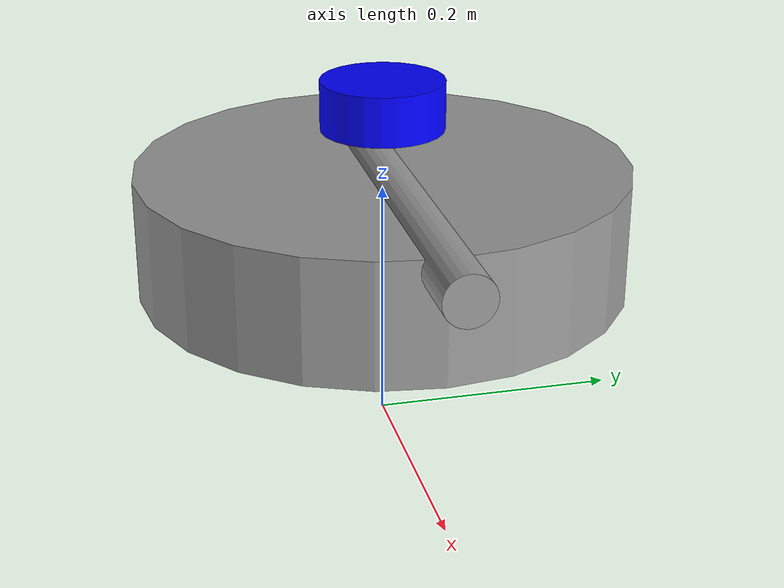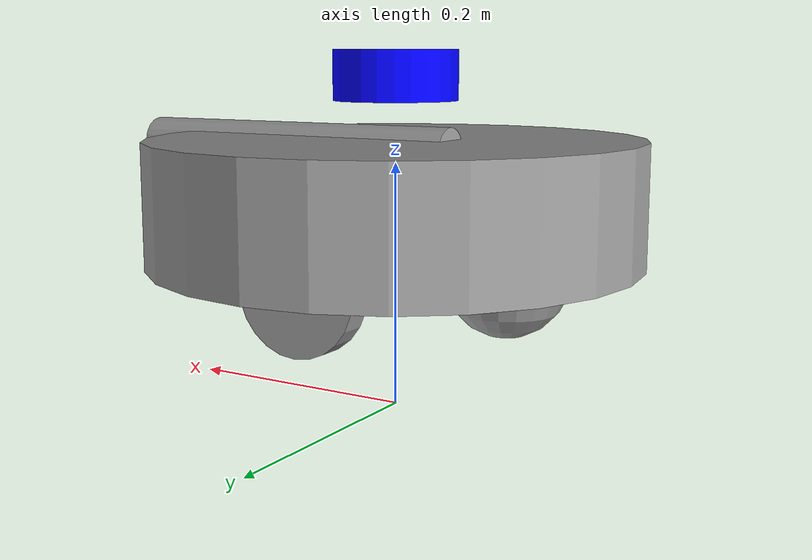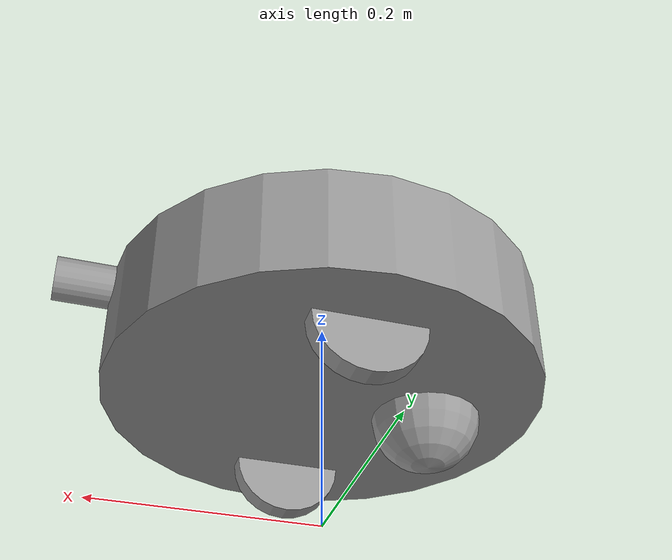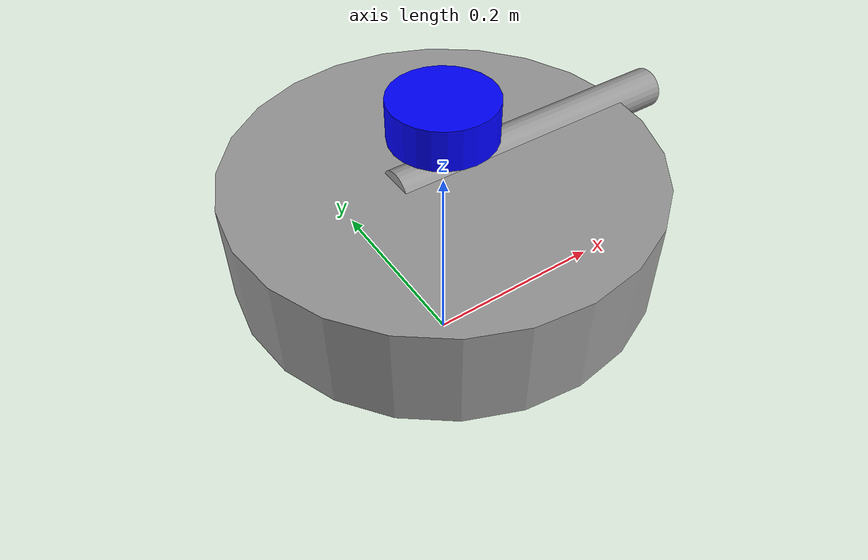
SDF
<?xml version='1.0'?>
<sdf version='1.7'>
  <model name='test_robot'>
    <pose>-0 0 0.07 0 0 0</pose>

    <link name='base_link'>
      <inertial>
        <mass>14.7655</mass>
        <inertia>
          <ixx>0.159959</ixx>
          <ixy>0</ixy>
          <ixz>0</ixz>
          <iyy>0.159959</iyy>
          <iyz>0</iyz>
          <izz>0.29531</izz>
        </inertia>
        <pose>0 0 0 0 -0 0</pose>
      </inertial>
      <pose>-0 0 0.1 0 -0 0</pose>
      <gravity>1</gravity>
      <self_collide>0</self_collide>
      <kinematic>0</kinematic>
      <enable_wind>0</enable_wind>

      <visual name='visual'>
        <pose>0 0 0 0 -0 0</pose>
        <geometry>
          <cylinder>
            <radius>0.2</radius>
            <length>0.1</length>
          </cylinder>
        </geometry>
        <material>
          <lighting>1</lighting>
          <script>
            <uri>file://media/materials/scripts/gazebo.material</uri>
            <name>Gazebo/Grey</name>
          </script>
          <shader type='pixel'>
            <normal_map>__default__</normal_map>
          </shader>
          <ambient>1 1 1 1</ambient>
          <diffuse>1 1 1 1</diffuse>
          <specular>0 0 0 1</specular>
          <emissive>0 0 0 1</emissive>
        </material>
        <transparency>0</transparency>
        <cast_shadows>1</cast_shadows>
      </visual>

      <visual name='directBox'>
        <pose>0.1 0 0.04 0 -1.57 0</pose>
        <geometry>
          <cylinder>
            <radius>0.02</radius>
            <length>0.3</length>
          </cylinder>
        </geometry>
        <material>
          <lighting>1</lighting>
          <script>
            <uri>file://media/materials/scripts/gazebo.material</uri>
            <name>Gazebo/Grey</name>
          </script>
          <shader type='pixel'>
            <normal_map>__default__</normal_map>
          </shader>
          <ambient>0.3 0.3 0.3 1</ambient>
          <diffuse>0.7 0.7 0.7 1</diffuse>
          <specular>0.01 0.01 0.01 1</specular>
          <emissive>0 0 0 1</emissive>
        </material>
        <transparency>0</transparency>
        <cast_shadows>1</cast_shadows>
      </visual>

      <collision name='collision'>
        <laser_retro>0</laser_retro>
        <max_contacts>10</max_contacts>
        <pose>0 0 0 0 -0 0</pose>
        <geometry>
          <cylinder>
            <radius>0.2</radius>
            <length>0.1</length>
          </cylinder>
        </geometry>
        <surface>
          <friction>
            <ode>
              <mu>1</mu>
              <mu2>1</mu2>
              <fdir1>0 0 0</fdir1>
              <slip1>0</slip1>
              <slip2>0</slip2>
            </ode>
            <torsional>
              <coefficient>1</coefficient>
              <patch_radius>0</patch_radius>
              <surface_radius>0</surface_radius>
              <use_patch_radius>1</use_patch_radius>
              <ode>
                <slip>0</slip>
              </ode>
            </torsional>
          </friction>
          <bounce>
            <restitution_coefficient>0</restitution_coefficient>
            <threshold>1e+06</threshold>
          </bounce>
          <contact>
            <collide_without_contact>0</collide_without_contact>
            <collide_without_contact_bitmask>1</collide_without_contact_bitmask>
            <collide_bitmask>1</collide_bitmask>
            <ode>
              <soft_cfm>0</soft_cfm>
              <soft_erp>0.2</soft_erp>
              <kp>1e+13</kp>
              <kd>1</kd>
              <max_vel>0.01</max_vel>
              <min_depth>0</min_depth>
            </ode>
            <bullet>
              <split_impulse>1</split_impulse>
              <split_impulse_penetration_threshold>-0.01</split_impulse_penetration_threshold>
              <soft_cfm>0</soft_cfm>
              <soft_erp>0.2</soft_erp>
              <kp>1e+13</kp>
              <kd>1</kd>
            </bullet>
          </contact>
        </surface>
      </collision>
    </link>

    <link name='right_wheel_link'>
      <inertial>
        <mass>0.184569</mass>
        <inertia>
          <ixx>0.00012151</ixx>
          <ixy>0</ixy>
          <ixz>0</ixz>
          <iyy>0.00012151</iyy>
          <iyz>0</iyz>
          <izz>0.00023071</izz>
        </inertia>
        <pose>0 0 0 0 -0 0</pose>
      </inertial>
      <pose>-0 -0.13 0.05 1.5707 -0 0</pose>
      <gravity>1</gravity>
      <self_collide>0</self_collide>
      <kinematic>0</kinematic>
      <enable_wind>0</enable_wind>
      <visual name='visual'>
        <pose>0 0 0 0 -0 0</pose>
        <geometry>
          <cylinder>
            <radius>0.05</radius>
            <length>0.02</length>
          </cylinder>
        </geometry>
        <material>
          <lighting>1</lighting>
          <script>
            <uri>file://media/materials/scripts/gazebo.material</uri>
            <name>Gazebo/Grey</name>
          </script>
          <shader type='pixel'>
            <normal_map>__default__</normal_map>
          </shader>
          <ambient>0.3 0.3 0.3 1</ambient>
          <diffuse>0.7 0.7 0.7 1</diffuse>
          <specular>0.01 0.01 0.01 1</specular>
          <emissive>0 0 0 1</emissive>
        </material>
        <transparency>0</transparency>
        <cast_shadows>1</cast_shadows>
      </visual>
      <collision name='collision'>
        <laser_retro>0</laser_retro>
        <max_contacts>10</max_contacts>
        <pose>0 0 0 0 -0 0</pose>
        <geometry>
          <cylinder>
            <radius>0.05</radius>
            <length>0.02</length>
          </cylinder>
        </geometry>
        <surface>
          <friction>
            <ode>
              <mu>1</mu>
              <mu2>1</mu2>
              <fdir1>0 0 0</fdir1>
              <slip1>0</slip1>
              <slip2>0</slip2>
            </ode>
            <torsional>
              <coefficient>1</coefficient>
              <patch_radius>0</patch_radius>
              <surface_radius>0</surface_radius>
              <use_patch_radius>1</use_patch_radius>
              <ode>
                <slip>0</slip>
              </ode>
            </torsional>
          </friction>
          <bounce>
            <restitution_coefficient>0</restitution_coefficient>
            <threshold>1e+06</threshold>
          </bounce>
          <contact>
            <collide_without_contact>0</collide_without_contact>
            <collide_without_contact_bitmask>1</collide_without_contact_bitmask>
            <collide_bitmask>1</collide_bitmask>
            <ode>
              <soft_cfm>0</soft_cfm>
              <soft_erp>0.2</soft_erp>
              <kp>1e+13</kp>
              <kd>1</kd>
              <max_vel>0.01</max_vel>
              <min_depth>0</min_depth>
            </ode>
            <bullet>
              <split_impulse>1</split_impulse>
              <split_impulse_penetration_threshold>-0.01</split_impulse_penetration_threshold>
              <soft_cfm>0</soft_cfm>
              <soft_erp>0.2</soft_erp>
              <kp>1e+13</kp>
              <kd>1</kd>
            </bullet>
          </contact>
        </surface>
      </collision>
    </link>
    <link name='left_wheel_link'>
      <inertial>
        <mass>0.184569</mass>
        <inertia>
          <ixx>0.00012151</ixx>
          <ixy>0</ixy>
          <ixz>0</ixz>
          <iyy>0.00012151</iyy>
          <iyz>0</iyz>
          <izz>0.00023071</izz>
        </inertia>
        <pose>0 0 0 0 -0 0</pose>
      </inertial>
      <pose>-0 0.13 0.05 1.5707 -0 0</pose>
      <gravity>1</gravity>
      <self_collide>0</self_collide>
      <kinematic>0</kinematic>
      <enable_wind>0</enable_wind>
      <visual name='visual'>
        <pose>0 0 0 0 -0 0</pose>
        <geometry>
          <cylinder>
            <radius>0.05</radius>
            <length>0.02</length>
          </cylinder>
        </geometry>
        <material>
          <lighting>1</lighting>
          <script>
            <uri>file://media/materials/scripts/gazebo.material</uri>
            <name>Gazebo/Grey</name>
          </script>
          <shader type='pixel'>
            <normal_map>__default__</normal_map>
          </shader>
          <ambient>0.3 0.3 0.3 1</ambient>
          <diffuse>0.7 0.7 0.7 1</diffuse>
          <specular>0.01 0.01 0.01 1</specular>
          <emissive>0 0 0 1</emissive>
        </material>
        <transparency>0</transparency>
        <cast_shadows>1</cast_shadows>
      </visual>
      <collision name='collision'>
        <laser_retro>0</laser_retro>
        <max_contacts>10</max_contacts>
        <pose>0 0 0 0 -0 0</pose>
        <geometry>
          <cylinder>
            <radius>0.05</radius>
            <length>0.02</length>
          </cylinder>
        </geometry>
        <surface>
          <friction>
            <ode>
              <mu>1</mu>
              <mu2>1</mu2>
              <fdir1>0 0 0</fdir1>
              <slip1>0</slip1>
              <slip2>0</slip2>
            </ode>
            <torsional>
              <coefficient>1</coefficient>
              <patch_radius>0</patch_radius>
              <surface_radius>0</surface_radius>
              <use_patch_radius>1</use_patch_radius>
              <ode>
                <slip>0</slip>
              </ode>
            </torsional>
          </friction>
          <bounce>
            <restitution_coefficient>0</restitution_coefficient>
            <threshold>1e+06</threshold>
          </bounce>
          <contact>
            <collide_without_contact>0</collide_without_contact>
            <collide_without_contact_bitmask>1</collide_without_contact_bitmask>
            <collide_bitmask>1</collide_bitmask>
            <ode>
              <soft_cfm>0</soft_cfm>
              <soft_erp>0.2</soft_erp>
              <kp>1e+13</kp>
              <kd>1</kd>
              <max_vel>0.01</max_vel>
              <min_depth>0</min_depth>
            </ode>
            <bullet>
              <split_impulse>1</split_impulse>
              <split_impulse_penetration_threshold>-0.01</split_impulse_penetration_threshold>
              <soft_cfm>0</soft_cfm>
              <soft_erp>0.2</soft_erp>
              <kp>1e+13</kp>
              <kd>1</kd>
            </bullet>
          </contact>
        </surface>
      </collision>
    </link>
    <link name='ball_wheel_link'>
      <inertial>
        <mass>5</mass>
        <inertia>
          <ixx>0.00061523</ixx>
          <ixy>0</ixy>
          <ixz>0</ixz>
          <iyy>0.00061523</iyy>
          <iyz>0</iyz>
          <izz>0.00061523</izz>
        </inertia>
        <pose>0 0 0 0 -0 0</pose>
      </inertial>
      <pose>-0.1 0 0.05 0 -0 0</pose>
      <gravity>1</gravity>
      <self_collide>0</self_collide>
      <kinematic>0</kinematic>
      <enable_wind>0</enable_wind>
      <visual name='visual'>
        <pose>0 0 0 0 -0 0</pose>
        <geometry>
          <sphere>
            <radius>0.05</radius>
          </sphere>
        </geometry>
        <material>
          <lighting>1</lighting>
          <script>
            <uri>file://media/materials/scripts/gazebo.material</uri>
            <name>Gazebo/Grey</name>
          </script>
          <shader type='pixel'>
            <normal_map>__default__</normal_map>
          </shader>
          <ambient>0.3 0.3 0.3 1</ambient>
          <diffuse>0.7 0.7 0.7 1</diffuse>
          <specular>0.01 0.01 0.01 1</specular>
          <emissive>0 0 0 1</emissive>
        </material>
        <transparency>0</transparency>
        <cast_shadows>1</cast_shadows>
      </visual>
      <collision name='collision'>
        <laser_retro>0</laser_retro>
        <max_contacts>10</max_contacts>
        <pose>0 0 0 0 -0 0</pose>
        <geometry>
          <sphere>
            <radius>0.05</radius>
          </sphere>
        </geometry>
        <surface>
          <friction>
            <ode>
              <mu>1</mu>
              <mu2>1</mu2>
              <fdir1>0 0 0</fdir1>
              <slip1>0</slip1>
              <slip2>0</slip2>
            </ode>
            <torsional>
              <coefficient>1</coefficient>
              <patch_radius>0</patch_radius>
              <surface_radius>0</surface_radius>
              <use_patch_radius>1</use_patch_radius>
              <ode>
                <slip>0</slip>
              </ode>
            </torsional>
          </friction>
          <bounce>
            <restitution_coefficient>0</restitution_coefficient>
            <threshold>1e+06</threshold>
          </bounce>
          <contact>
            <collide_without_contact>0</collide_without_contact>
            <collide_without_contact_bitmask>1</collide_without_contact_bitmask>
            <collide_bitmask>1</collide_bitmask>
            <ode>
              <soft_cfm>0</soft_cfm>
              <soft_erp>0.2</soft_erp>
              <kp>1e+13</kp>
              <kd>1</kd>
              <max_vel>0.01</max_vel>
              <min_depth>0</min_depth>
            </ode>
            <bullet>
              <split_impulse>1</split_impulse>
              <split_impulse_penetration_threshold>-0.01</split_impulse_penetration_threshold>
              <soft_cfm>0</soft_cfm>
              <soft_erp>0.2</soft_erp>
              <kp>1e+13</kp>
              <kd>1</kd>
            </bullet>
          </contact>
        </surface>
      </collision>
    </link>
    <joint name='right_wheel_joint' type='revolute'>
      <parent>base_link</parent>
      <child>right_wheel_link</child>
      <pose>0 0 0 0 -0 0</pose>
      <axis>
        <xyz>-0 -0 -1</xyz>
        <limit>
          <lower>-1.79769e+308</lower>
          <upper>1.79769e+308</upper>
          <effort>-1</effort>
          <velocity>-1</velocity>
        </limit>
        <dynamics>
          <spring_reference>0</spring_reference>
          <spring_stiffness>0</spring_stiffness>
          <damping>0</damping>
        </dynamics>
      </axis>
      <physics>
        <ode>
          <limit>
            <cfm>0</cfm>
            <erp>0.2</erp>
          </limit>
          <suspension>
            <cfm>0</cfm>
            <erp>0.2</erp>
          </suspension>
        </ode>
      </physics>
    </joint>
    <joint name='left_wheel_joint' type='revolute'>
      <parent>base_link</parent>
      <child>left_wheel_link</child>
      <pose>0 0 0 0 -0 0</pose>
      <axis>
        <xyz>-0 -0 -1</xyz>
        <limit>
          <lower>-1.79769e+308</lower>
          <upper>1.79769e+308</upper>
          <effort>-1</effort>
          <velocity>-1</velocity>
        </limit>
        <dynamics>
          <spring_reference>0</spring_reference>
          <spring_stiffness>0</spring_stiffness>
          <damping>0</damping>
        </dynamics>
      </axis>
      <physics>
        <ode>
          <limit>
            <cfm>0</cfm>
            <erp>0.2</erp>
          </limit>
          <suspension>
            <cfm>0</cfm>
            <erp>0.2</erp>
          </suspension>
        </ode>
      </physics>
    </joint>
    <joint name='ball_wheel_joint' type='ball'>
      <parent>base_link</parent>
      <child>ball_wheel_link</child>
      <pose>0 0 0 0 -0 0</pose>
      <physics>
        <ode>
          <limit>
            <cfm>0</cfm>
            <erp>0.2</erp>
          </limit>
          <suspension>
            <cfm>0</cfm>
            <erp>0.2</erp>
          </suspension>
        </ode>
      </physics>
    </joint>

<link name="lidar_link">
    <inertial>
      <mass>0.1</mass>
      <inertia>
        <ixx>0.01</ixx>
        <iyy>0.01</iyy>
        <izz>0.01</izz>
      </inertia>
    </inertial>
  <pose>0 0 0.2 0 -0 0</pose>
  <collision name="lidar_collision">
    <geometry>
      <cylinder>
        <radius>0.05</radius>
        <length>0.04</length>
      </cylinder>
    </geometry>
  </collision>
  <visual name="lidar_visual">
    <geometry>
      <cylinder>
        <radius>0.05</radius>
        <length>0.04</length>
      </cylinder>
    </geometry>
        <material>
      <ambient>0 0 1 1</ambient>
      <diffuse>0 0 1 1</diffuse>
    </material>
  </visual>

   <sensor name="lidar_sensor" type="ray">
    <pose>0 0 0 0 0 0</pose>  <!-- Относительно lidar_link -->
    <always_on>true</always_on>
    <update_rate>20</update_rate>
    <visualize>true</visualize>  <!-- Это ключевой параметр! -->
    <topic>/scan</topic>

    <plugin name="gazebo_ros_lidar_controller" filename="libgazebo_ros_ray_sensor.so">
      <ros>
        <namespace>/</namespace>
        <remapping>~/out:=scan</remapping>
      </ros>
      <output_type>sensor_msgs/LaserScan</output_type>
      <frame_name>lidar_link</frame_name>
    </plugin>

    <ray>
      <scan>
        <horizontal>
          <samples>360</samples>
          <resolution>1.0</resolution>
          <min_angle>-3.14159</min_angle>
          <max_angle>3.14159</max_angle>
        </horizontal>
      </scan>
      <range>
        <min>0.1</min>
        <max>10.0</max>
        <resolution>0.02</resolution>
      </range>
      <noise>
        <type>gaussian</type>
        <mean>0.0</mean>
        <stddev>0.01</stddev>
      </noise>
    </ray>
  </sensor>
</link>

<joint name="lidar_joint" type="fixed">
  <parent>base_link</parent>
  <child>lidar_link</child>
  <pose>0.0 0 0.0 0 0 0</pose>
</joint>

    <plugin name = "wheel_robot_controller" filename = "/home/misha/Documents/ROS2_Gazebo_tutorials/navigation_ws/install/test_robot_plugin/lib/libwheel_robot_controller.so">
    </plugin>
  </model>
</sdf>
